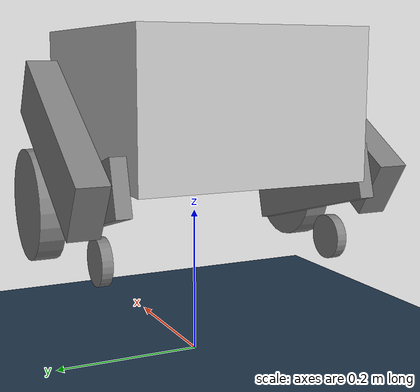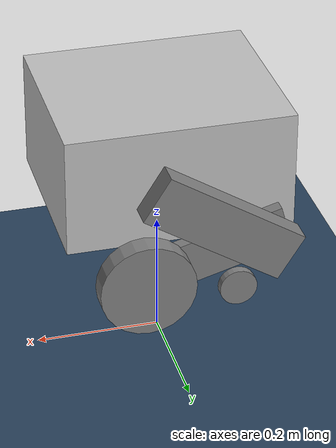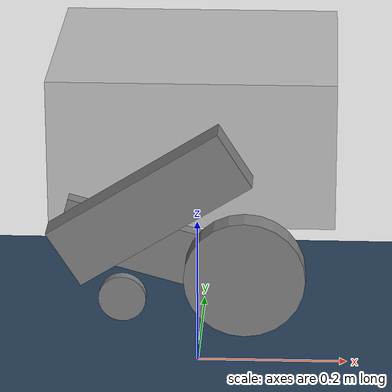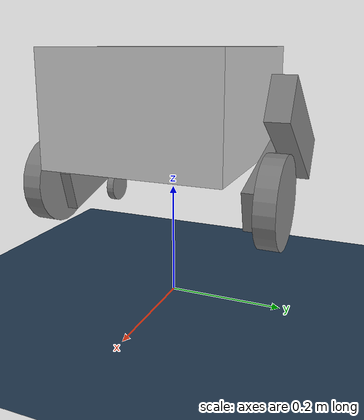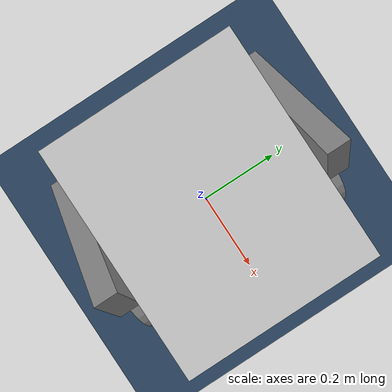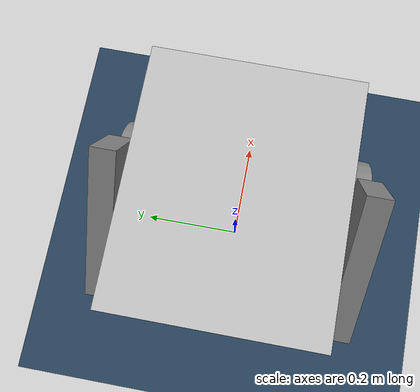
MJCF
<mujoco model="andymini scene">
  <include file="andymini.xml"/>

  <statistic center="1.0 0.7 1.0" extent="0.8"/>

  <visual>
    <headlight diffuse="0.6 0.6 0.6" ambient="0.1 0.1 0.1" specular="0.9 0.9 0.9"/>
    <rgba haze="0.15 0.25 0.35 1"/>
    <global azimuth="-140" elevation="-20"/>
  </visual>

  <asset>
    <texture type="skybox" builtin="flat" rgb1="0 0 0" rgb2="0 0 0" width="512" height="3072"/>
    <texture type="2d" name="groundplane" builtin="checker" mark="edge"
             rgb1="0.2 0.3 0.4" rgb2="0.1 0.2 0.3" markrgb="0.8 0.8 0.8"
             width="300" height="300"/>
    <material name="groundplane" texture="groundplane" texuniform="true"
              texrepeat="5 5" reflectance="0.2"/>
  </asset>

  <worldbody>
    <light pos="1 0 3.5" dir="0 0 -1" directional="true"/>
    <geom name="floor" size="0 0 0.05" type="plane" material="groundplane" friction="1 0.005 0.0001"/>
  </worldbody>
</mujoco>

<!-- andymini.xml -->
<mujoco model="andymini">
  <compiler angle="radian"/>
  <option timestep="0.002" gravity="0 0 -9.81"/>

  <worldbody>
    <body name="base_link" pos="0 0 0.35">
      <inertial pos="0.0272096 0.000129587 -0.00824302"
                quat="0.562229 0.566304 -0.424749 0.427536"
                mass="6.65735" diaginertia="0.0416409 0.0288335 0.0252217"/>
      <joint name="floating_base" type="free"/>
      <geom size="0.18 0.15 0.095" type="box" rgba="0.752941 0.752941 0.752941 1"/>

      <body name="left_leg_1" pos="0.0108324 0.1335 0.00370167">
        <inertial pos="-0.035651 0.046477 -0.024313"
                  quat="0.638639 0.309491 0.304834 0.635163"
                  mass="1.4568" diaginertia="0.0037621 0.00313129 0.000742811"/>
        <joint name="joint_left_leg_1" axis="0 1 0" range="-1.57 0.52" actuatorfrcrange="-11 11"/>
        <geom size="0.125 0.02 0.04" pos="-0.06 0.065 -0.05"
              quat="0.960806 0 -0.27722 0" type="box"/>
        <body name="left_leg_2" pos="-0.117192 0.0435 -0.108932">
          <inertial pos="0.12003 -0.0029519 -0.027706"
                    quat="0.452733 0.544559 0.543039 0.451216"
                    mass="0.84836" diaginertia="0.00239482 0.00210285 0.000349164"/>
          <joint name="joint_left_leg_2" axis="0 1 0" range="0 1.26" actuatorfrcrange="-11 11"/>
          <geom size="0.13 0.01 0.035" pos="0.07 -0.014 -0.014"
                quat="0.99078 0 0.135482 0" type="box"/>
          <body name="left_leg_3" pos="0.175005 0.023 -0.0325245">
            <inertial pos="-1.4662e-05 0.0030534 -2.1762e-06"
                      quat="0.686533 -0.169409 -0.169425 0.68649"
                      mass="0.78717" diaginertia="0.0024303 0.00132114 0.00132096"/>
            <joint name="joint_left_leg_3" axis="0 1 0" range="-62831.8 62831.8" actuatorfrcrange="-11 11"/>
            <geom size="0.0755 0.017" quat="0.707388 0.706825 0 0" type="cylinder"/>
          </body>
          <body name="left_wheel_1" pos="0.0197237 -0.012 -0.0799498">
            <inertial pos="2.79305e-08 0 -6.50762e-08" quat="0.707107 0 0 0.707107"
                      mass="0.05" diaginertia="2.45054e-05 1.38785e-05 1.38785e-05"/>
            <joint name="joint_left_wheel_1" axis="0 1 0" damping="0.001" frictionloss="0.001"/>
            <geom size="0.03 0.007" quat="0.707388 0.706825 0 0" type="cylinder"/>
          </body>
        </body>
      </body>

      <body name="right_leg_1" pos="0.010832 -0.1335 0.0037014">
        <inertial pos="-0.035731 -0.046428 -0.024276"
                  quat="0.634176 0.305801 0.309694 0.639059"
                  mass="1.4529" diaginertia="0.0037362 0.00310889 0.000737911"/>
        <joint name="joint_right_leg_1" axis="0 1 0" range="-1.57 0.52" actuatorfrcrange="-11 11"/>
        <geom size="0.125 0.02 0.04" pos="-0.06 -0.065 -0.05"
              quat="0.960806 0 -0.27722 0" type="box"/>
        <body name="right_leg_2" pos="-0.11719 -0.0435 -0.10893">
          <inertial pos="0.11999 0.0029519 -0.027923"
                    quat="0.450765 0.543587 0.543983 0.453218"
                    mass="0.84837" diaginertia="0.00239482 0.0021028 0.000349136"/>
          <joint name="joint_right_leg_2" axis="0 1 0" range="0 1.26" actuatorfrcrange="-11 11"/>
          <geom size="0.13 0.01 0.035" pos="0.07 0.014 -0.014"
                quat="0.99078 0 0.135482 0" type="box"/>
          <body name="right_leg_3" pos="0.175007 -0.023 -0.0325163">
            <inertial pos="-4.8421e-06 -0.0030534 -1.2896e-05"
                      quat="0.363198 0.606686 0.606728 0.36318"
                      mass="0.78717" diaginertia="0.0024303 0.00132114 0.00132096"/>
            <joint name="joint_right_leg_3" axis="0 1 0" range="-62831.8 62831.8" actuatorfrcrange="-11 11"/>
            <geom size="0.0755 0.017" quat="0.707388 0.706825 0 0" type="cylinder"/>
          </body>
          <body name="right_wheel_1" pos="0.0197272 0.012 -0.079949">
            <inertial pos="2.14719e-08 0 -6.74832e-08" quat="0.707107 0 0 0.707107"
                      mass="0.05" diaginertia="2.45054e-05 1.38785e-05 1.38785e-05"/>
            <joint name="joint_right_wheel_1" axis="0 -1 0" damping="0.001" frictionloss="0.001"/>
            <geom size="0.03 0.007" quat="0.707388 0.706825 0 0" type="cylinder"/>
          </body>
        </body>
      </body>
      <site name="trunk_imu" size="0.005"/>
    </body>
  </worldbody>

  <actuator>
    <motor name="joint_left_leg_1" joint="joint_left_leg_1" ctrllimited="true" ctrlrange="-11 11"/>
    <motor name="joint_left_leg_2" joint="joint_left_leg_2" ctrllimited="true" ctrlrange="-11 11"/>
    <motor name="joint_left_leg_3" joint="joint_left_leg_3" ctrllimited="true" ctrlrange="-11 11"/>
    <motor name="joint_right_leg_1" joint="joint_right_leg_1" ctrllimited="true" ctrlrange="-11 11"/>
    <motor name="joint_right_leg_2" joint="joint_right_leg_2" ctrllimited="true" ctrlrange="-11 11"/>
    <motor name="joint_right_leg_3" joint="joint_right_leg_3" ctrllimited="true" ctrlrange="-11 11"/>
  </actuator>

  <!-- rl_sim_mujoco indexes sensordata as q[6], dq[6], tau[6], quat[4], gyro[3]. -->
  <sensor>
    <jointpos name="left_leg_1_pos" joint="joint_left_leg_1"/>
    <jointpos name="left_leg_2_pos" joint="joint_left_leg_2"/>
    <jointpos name="left_leg_3_pos" joint="joint_left_leg_3"/>
    <jointpos name="right_leg_1_pos" joint="joint_right_leg_1"/>
    <jointpos name="right_leg_2_pos" joint="joint_right_leg_2"/>
    <jointpos name="right_leg_3_pos" joint="joint_right_leg_3"/>

    <jointvel name="left_leg_1_vel" joint="joint_left_leg_1"/>
    <jointvel name="left_leg_2_vel" joint="joint_left_leg_2"/>
    <jointvel name="left_leg_3_vel" joint="joint_left_leg_3"/>
    <jointvel name="right_leg_1_vel" joint="joint_right_leg_1"/>
    <jointvel name="right_leg_2_vel" joint="joint_right_leg_2"/>
    <jointvel name="right_leg_3_vel" joint="joint_right_leg_3"/>

    <jointactuatorfrc name="left_leg_1_torque" joint="joint_left_leg_1"/>
    <jointactuatorfrc name="left_leg_2_torque" joint="joint_left_leg_2"/>
    <jointactuatorfrc name="left_leg_3_torque" joint="joint_left_leg_3"/>
    <jointactuatorfrc name="right_leg_1_torque" joint="joint_right_leg_1"/>
    <jointactuatorfrc name="right_leg_2_torque" joint="joint_right_leg_2"/>
    <jointactuatorfrc name="right_leg_3_torque" joint="joint_right_leg_3"/>

    <framequat name="trunk_imu_quat" objtype="site" objname="trunk_imu"/>
    <gyro name="trunk_imu_gyro" site="trunk_imu"/>
    <accelerometer name="trunk_imu_acc" site="trunk_imu"/>
  </sensor>
</mujoco>
